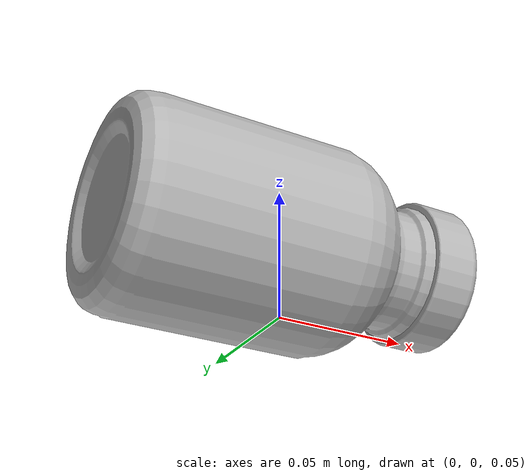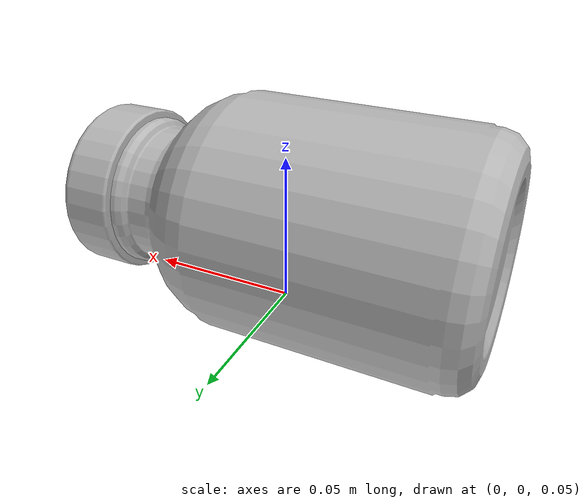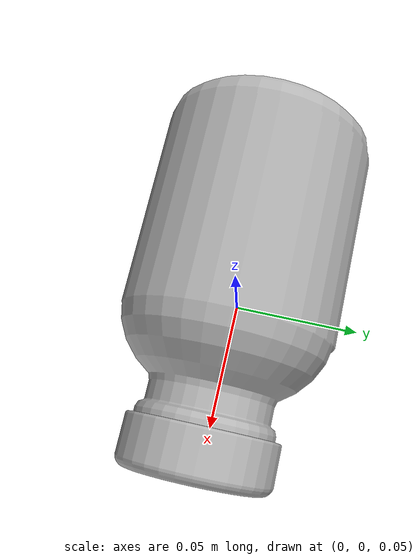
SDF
<?xml version="1.0"?>
<sdf version="1.6">
  <model name="trash_small_bottle_01">
    <static>true</static>
    <pose>0 0 0.0391 0 0 0</pose>
    <link name="link">
      <visual name="visual">
        <cast_shadows>false</cast_shadows>
        <geometry>
          <mesh>
            <uri>model://trash_small_bottle_01/meshes/trash_small_bottle_01.dae</uri>
            <scale>1.0000 1.0000 1.0000</scale>
          </mesh>
        </geometry>
      </visual>
    </link>
  </model>
</sdf>
